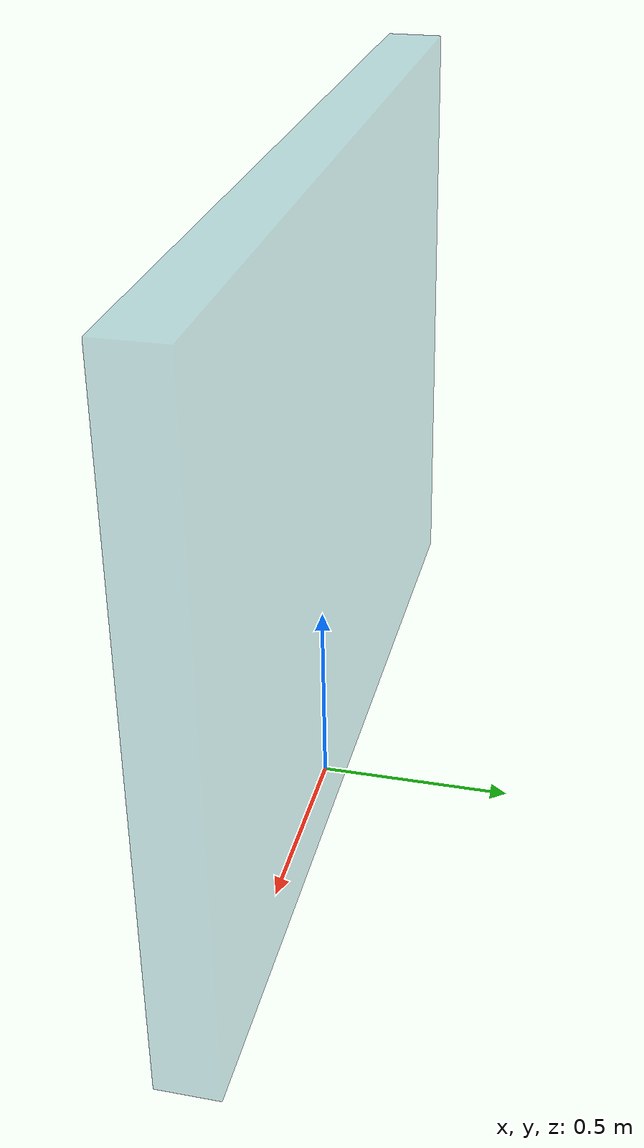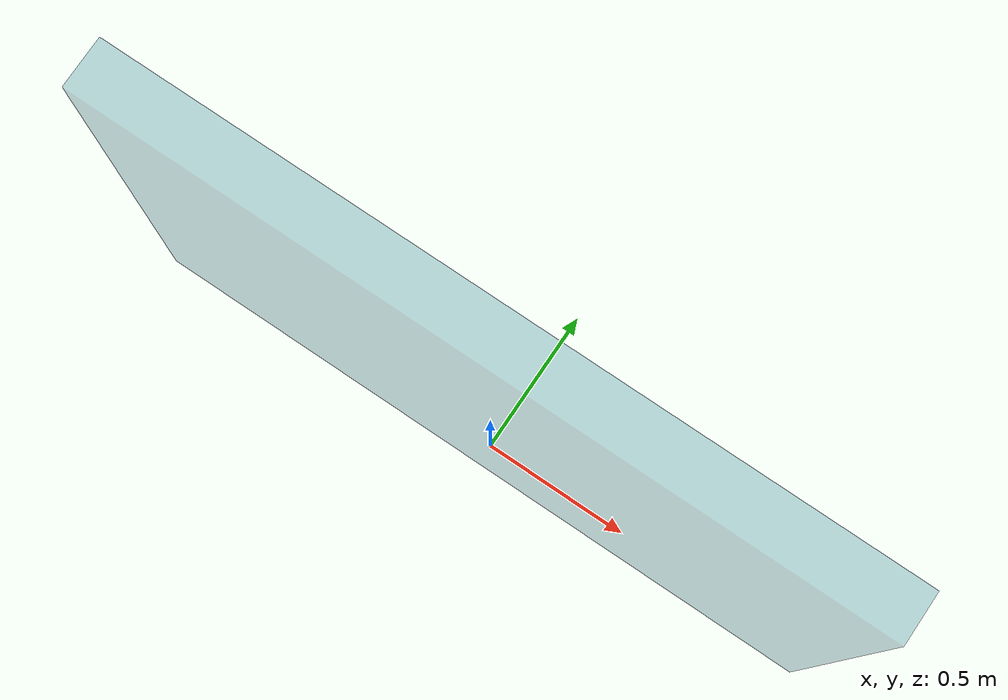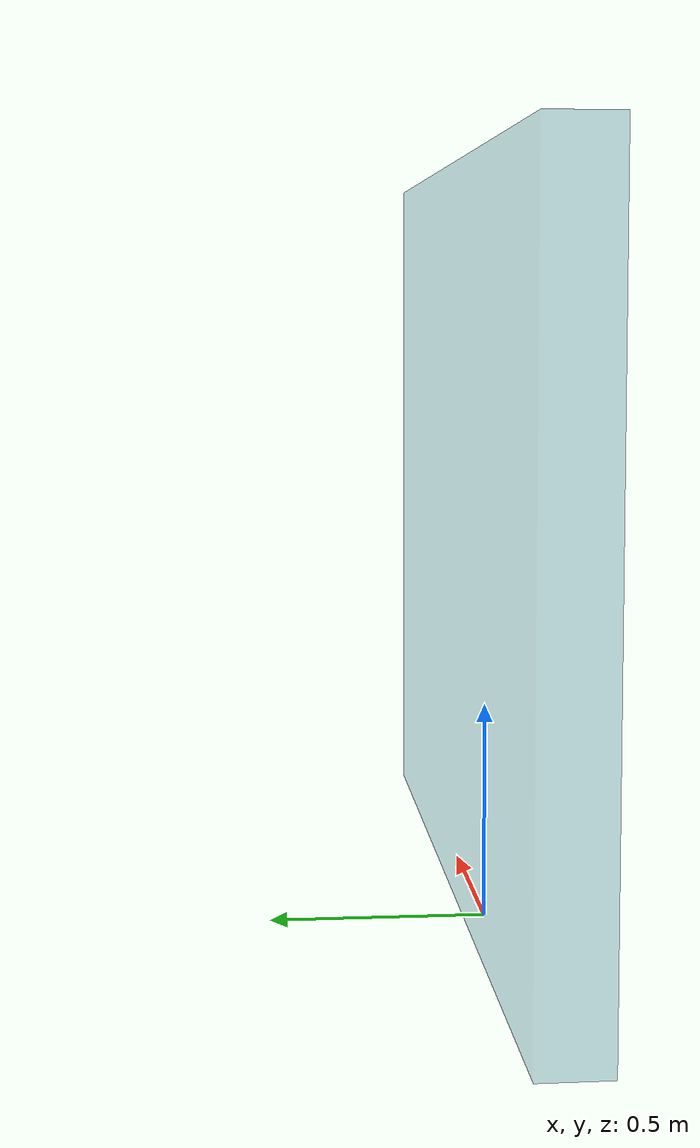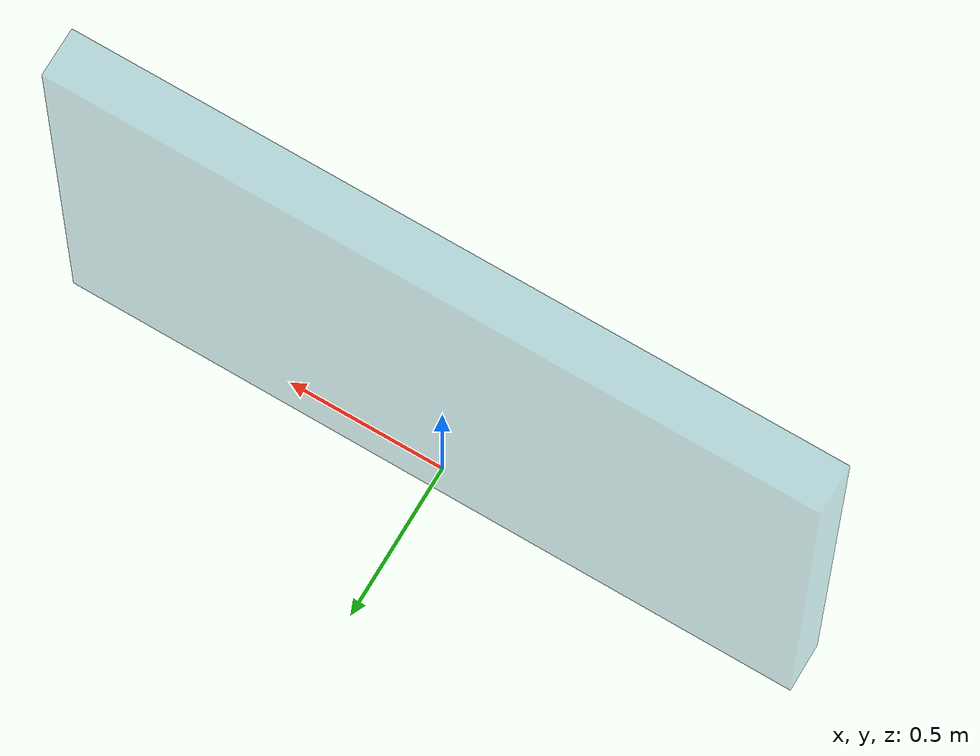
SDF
<?xml version='1.0'?>
<sdf version='1.6'>
  <model name='window_large'>
    <link name='link_2'>
      <self_collide>0</self_collide>
      <enable_wind>0</enable_wind>
      <kinematic>0</kinematic>
      <pose frame=''>0 0 0 0 -0 0</pose>
      <gravity>1</gravity>
      <inertial>
        <mass>1</mass>
        <pose frame=''>0 0 0 0 -0 0</pose>
        <inertia>
          <ixx>1</ixx>
          <ixy>0</ixy>
          <ixz>0</ixz>
          <iyy>1</iyy>
          <iyz>0</iyz>
          <izz>1</izz>
        </inertia>
      </inertial>
      <visual name='visual'>
        <pose frame=''>0 0 0.9 0 -0 0</pose>
        <geometry>
          <box>
            <size>2.34 0.15 1.68</size>
          </box>
        </geometry>
        <material>
          <lighting>1</lighting>
          <ambient>0.1 0.5 0.6 1</ambient>
          <diffuse>0.1 0.5 0.6 1</diffuse>
          <specular>0.01 0.01 0.01 1</specular>
          <emissive>0 0 0 1</emissive>
          <shader type='pixel'>
            <normal_map>__default__</normal_map>
          </shader>
          <script>
            <name>ModelPreview_1::link_2::visual_MATERIAL_</name>
            <uri>__default__</uri>
          </script>
        </material>
        <cast_shadows>1</cast_shadows>
        <transparency>0.7</transparency>
      </visual>
      <collision name='collision'>
        <laser_retro>0</laser_retro>
        <max_contacts>10</max_contacts>
        <pose frame=''>0 0 0.9 0 -0 0</pose>
        <geometry>
          <box>
            <size>2.34 0.15 1.68</size>
          </box>
        </geometry>
        <surface>
          <friction>
            <ode>
              <mu>1</mu>
              <mu2>1</mu2>
              <fdir1>0 0 0</fdir1>
              <slip1>0</slip1>
              <slip2>0</slip2>
            </ode>
            <torsional>
              <coefficient>1</coefficient>
              <patch_radius>0</patch_radius>
              <surface_radius>0</surface_radius>
              <use_patch_radius>1</use_patch_radius>
              <ode>
                <slip>0</slip>
              </ode>
            </torsional>
          </friction>
          <bounce>
            <restitution_coefficient>0</restitution_coefficient>
            <threshold>1e+06</threshold>
          </bounce>
          <contact>
            <collide_without_contact>0</collide_without_contact>
            <collide_without_contact_bitmask>1</collide_without_contact_bitmask>
            <collide_bitmask>1</collide_bitmask>
            <ode>
              <soft_cfm>0</soft_cfm>
              <soft_erp>0.2</soft_erp>
              <kp>1e+13</kp>
              <kd>1</kd>
              <max_vel>0.01</max_vel>
              <min_depth>0</min_depth>
            </ode>
            <bullet>
              <split_impulse>1</split_impulse>
              <split_impulse_penetration_threshold>-0.01</split_impulse_penetration_threshold>
              <soft_cfm>0</soft_cfm>
              <soft_erp>0.2</soft_erp>
              <kp>1e+13</kp>
              <kd>1</kd>
            </bullet>
          </contact>
        </surface>
      </collision>
    </link>
    <static>1</static>
    <allow_auto_disable>1</allow_auto_disable>
  </model>
</sdf>
